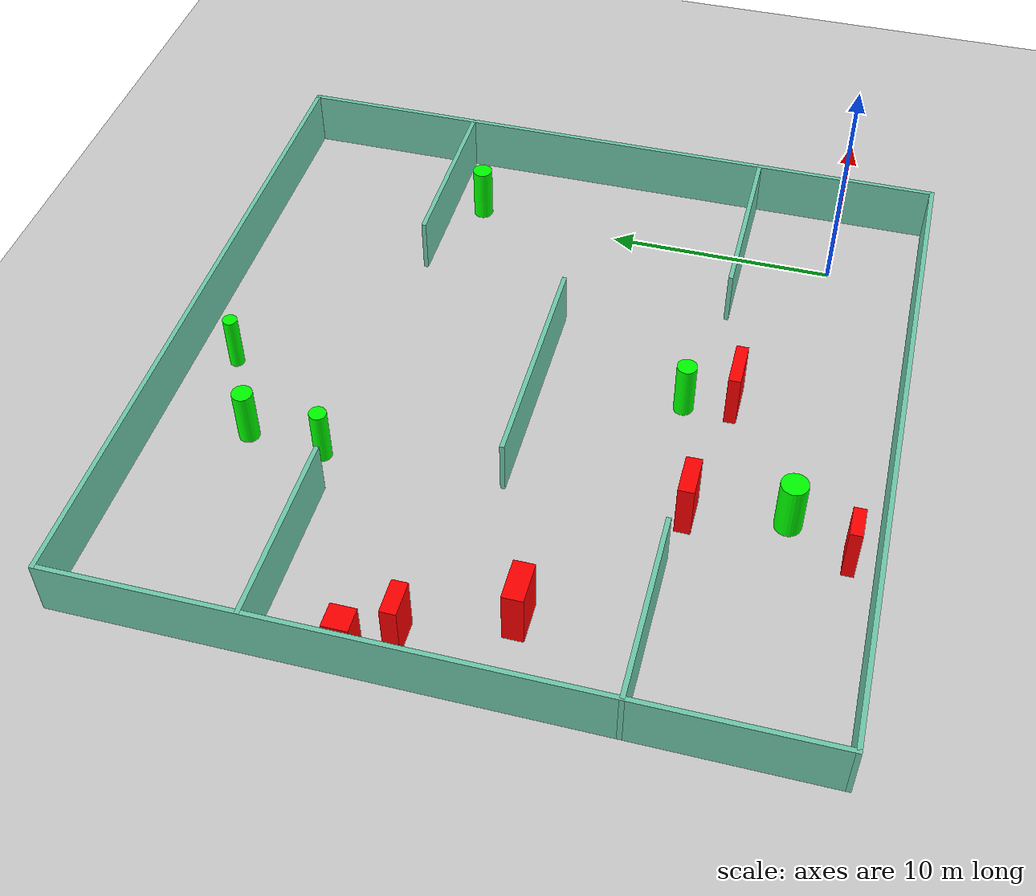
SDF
<sdf version="1.7">
 <world name="default">
  <light name="sun" type="directional">
   <pose>0 0 10 0 -0 0</pose>
   <diffuse>0.8 0.8 0.8 1</diffuse>
   <specular>0.2 0.2 0.2 1</specular>
   <attenuation>
    <range>1000</range>
    <constant>0.9</constant>
    <linear>0.01</linear>
    <quadratic>0.001</quadratic>
   </attenuation>
   <direction>-0.5 0.1 -0.9</direction>
   <spot><inner_angle>0</inner_angle><outer_angle>0</outer_angle><falloff>0</falloff></spot>
  </light>
  <model name="ground_plane">
   <static>1</static>
   <link name="link">
    <collision name="collision">
     <geometry><plane><normal>0 0 1</normal><size>100 100</size></plane></geometry>
     <surface>
      <contact><collide_bitmask>65535</collide_bitmask></contact>
      <friction><ode><mu>100</mu><mu2>50</mu2></ode></friction>
     </surface>
    </collision>
    <visual name="visual">
     <cast_shadows>0</cast_shadows>
     <geometry><plane><normal>0 0 1</normal><size>100 100</size></plane></geometry>
     <material>
      <script><uri>file://media/materials/scripts/gazebo.material</uri><name>Gazebo/Grey</name></script>
     </material>
    </visual>
   </link>
  </model>
  <gravity>0 0 -9.8</gravity>
  <magnetic_field>6e-06 2.3e-05 -4.2e-05</magnetic_field>
  <atmosphere type="adiabatic"/>
  <physics type="ode">
   <max_step_size>0.001</max_step_size>
   <real_time_factor>1</real_time_factor>
   <real_time_update_rate>1000</real_time_update_rate>
  </physics>
  <scene><ambient>0.4 0.4 0.4 1</ambient><background>0.7 0.7 0.7 1</background><shadows>1</shadows></scene>
  <spherical_coordinates>
   <surface_model>EARTH_WGS84</surface_model>
   <latitude_deg>0</latitude_deg>
   <longitude_deg>0</longitude_deg>
   <elevation>0</elevation>
   <heading_deg>0</heading_deg>
  </spherical_coordinates>
  <model name="my_base_walls">
   <link name="Wall_10">
    <collision name="Wall_10_Collision">
     <geometry><box><size>8.2 0.2 2.5</size></box></geometry>
     <pose>0 0 1.25 0 -0 0</pose>
    </collision>
    <visual name="Wall_10_Visual">
     <pose>0 0 1.25 0 -0 0</pose>
     <geometry><box><size>8.2 0.2 2.5</size></box></geometry>
     <material>
      <script><uri>file://media/materials/scripts/gazebo.material</uri><name>Gazebo/Grey</name></script>
      <ambient>0.435294 0.796078 0.67451 1</ambient>
     </material>
     <meta><layer>0</layer></meta>
    </visual>
    <pose>-11 -7 0 0 -0 0</pose>
   </link>
   <link name="Wall_12">
    <collision name="Wall_12_Collision">
     <geometry><box><size>8.2 0.2 2.5</size></box></geometry>
     <pose>0 0 1.25 0 -0 0</pose>
    </collision>
    <visual name="Wall_12_Visual">
     <pose>0 0 1.25 0 -0 0</pose>
     <geometry><box><size>8.2 0.2 2.5</size></box></geometry>
     <material>
      <script><uri>file://media/materials/scripts/gazebo.material</uri><name>Gazebo/Grey</name></script>
      <ambient>0.435294 0.796078 0.67451 1</ambient>
     </material>
     <meta><layer>0</layer></meta>
    </visual>
    <pose>-11 7 0 0 -0 0</pose>
   </link>
   <link name="Wall_14">
    <collision name="Wall_14_Collision">
     <geometry><box><size>8.2 0.2 2.5</size></box></geometry>
     <pose>0 0 1.25 0 -0 0</pose>
    </collision>
    <visual name="Wall_14_Visual">
     <pose>0 0 1.25 0 -0 0</pose>
     <geometry><box><size>8.2 0.2 2.5</size></box></geometry>
     <material>
      <script><uri>file://media/materials/scripts/gazebo.material</uri><name>Gazebo/Grey</name></script>
      <ambient>0.435294 0.796078 0.67451 1</ambient>
     </material>
     <meta><layer>0</layer></meta>
    </visual>
    <pose>11 7 0 0 -0 3.14159</pose>
   </link>
   <link name="Wall_16">
    <collision name="Wall_16_Collision">
     <geometry><box><size>10.2 0.2 2.5</size></box></geometry>
     <pose>0 0 1.25 0 -0 0</pose>
    </collision>
    <visual name="Wall_16_Visual">
     <pose>0 0 1.25 0 -0 0</pose>
     <geometry><box><size>10.2 0.2 2.5</size></box></geometry>
     <material>
      <script><uri>file://media/materials/scripts/gazebo.material</uri><name>Gazebo/Grey</name></script>
      <ambient>0.435294 0.796078 0.67451 1</ambient>
     </material>
     <meta><layer>0</layer></meta>
    </visual>
    <pose>0 0 0 0 -0 3.14159</pose>
   </link>
   <link name="Wall_2">
    <collision name="Wall_2_Collision">
     <geometry><box><size>30.2 0.2 2.5</size></box></geometry>
     <pose>0 0 1.25 0 -0 0</pose>
    </collision>
    <visual name="Wall_2_Visual">
     <pose>0 0 1.25 0 -0 0</pose>
     <geometry><box><size>30.2 0.2 2.5</size></box></geometry>
     <material>
      <script><uri>file://media/materials/scripts/gazebo.material</uri><name>Gazebo/Grey</name></script>
      <ambient>0.435294 0.796078 0.67451 1</ambient>
     </material>
     <meta><layer>0</layer></meta>
    </visual>
    <pose>0 -15 0 0 -0 3.14159</pose>
   </link>
   <link name="Wall_3">
    <collision name="Wall_3_Collision">
     <geometry><box><size>30.2 0.2 2.5</size></box></geometry>
     <pose>0 0 1.25 0 -0 0</pose>
    </collision>
    <visual name="Wall_3_Visual">
     <pose>0 0 1.25 0 -0 0</pose>
     <geometry><box><size>30.2 0.2 2.5</size></box></geometry>
     <material>
      <script><uri>file://media/materials/scripts/gazebo.material</uri><name>Gazebo/Grey</name></script>
      <ambient>0.435294 0.796078 0.67451 1</ambient>
     </material>
     <meta><layer>0</layer></meta>
    </visual>
    <pose>-15 0 0 0 -0 1.5708</pose>
   </link>
   <link name="Wall_4">
    <collision name="Wall_4_Collision">
     <geometry><box><size>30.2 0.2 2.5</size></box></geometry>
     <pose>0 0 1.25 0 -0 0</pose>
    </collision>
    <visual name="Wall_4_Visual">
     <pose>0 0 1.25 0 -0 0</pose>
     <geometry><box><size>30.2 0.2 2.5</size></box></geometry>
     <material>
      <script><uri>file://media/materials/scripts/gazebo.material</uri><name>Gazebo/Grey</name></script>
      <ambient>0.435294 0.796078 0.67451 1</ambient>
     </material>
     <meta><layer>0</layer></meta>
    </visual>
    <pose>0 15 0 0 -0 0</pose>
   </link>
   <link name="Wall_6">
    <collision name="Wall_6_Collision">
     <geometry><box><size>30.2 0.2 2.5</size></box></geometry>
     <pose>0 0 1.25 0 -0 0</pose>
    </collision>
    <visual name="Wall_6_Visual">
     <pose>0 0 1.25 0 -0 0</pose>
     <geometry><box><size>30.2 0.2 2.5</size></box></geometry>
     <material>
      <script><uri>file://media/materials/scripts/gazebo.material</uri><name>Gazebo/Grey</name></script>
      <ambient>0.435294 0.796078 0.67451 1</ambient>
     </material>
     <meta><layer>0</layer></meta>
    </visual>
    <pose>15 0 0 0 -0 1.5708</pose>
   </link>
   <link name="Wall_8">
    <collision name="Wall_8_Collision">
     <geometry><box><size>8.2 0.2 2.5</size></box></geometry>
     <pose>0 0 1.25 0 -0 0</pose>
    </collision>
    <visual name="Wall_8_Visual">
     <pose>0 0 1.25 0 -0 0</pose>
     <geometry><box><size>8.2 0.2 2.5</size></box></geometry>
     <material>
      <script><uri>file://media/materials/scripts/gazebo.material</uri><name>Gazebo/Grey</name></script>
      <ambient>0.435294 0.796078 0.67451 1</ambient>
     </material>
     <meta><layer>0</layer></meta>
    </visual>
    <pose>11 -7 0 0 -0 3.14159</pose>
   </link>
   <static>1</static>
   <pose>-11 11 0 0 -0 0</pose>
  </model>
  <model name="cylinder1">
   <static>1</static>
   <link name="link">
    <inertial>
     <mass>1</mass>
     <inertia><ixx>0.5</ixx><ixy>0</ixy><ixz>0</ixz><iyy>0.5</iyy><iyz>0</iyz><izz>1</izz></inertia>
    </inertial>
    <collision name="collision">
     <geometry><cylinder><radius>0.3704196095841307</radius><length>2.5</length></cylinder></geometry>
    </collision>
    <visual name="visual">
     <geometry><cylinder><radius>0.3704196095841307</radius><length>2.5</length></cylinder></geometry>
     <material>
      <ambient>0 1 0 1</ambient>
      <diffuse>0 1 0 1</diffuse>
      <specular>0.1 0.1 0.1 1</specular>
      <emissive>0 0 0 0</emissive>
     </material>
    </visual>
   </link>
   <pose>-16.22072661796682 18.591427453134163 1.25 0 0 0</pose>
  </model>
  <model name="cylinder2">
   <static>1</static>
   <link name="link">
    <inertial>
     <mass>1</mass>
     <inertia><ixx>0.5</ixx><ixy>0</ixy><ixz>0</ixz><iyy>0.5</iyy><iyz>0</iyz><izz>1</izz></inertia>
    </inertial>
    <collision name="collision">
     <geometry><cylinder><radius>0.3147209102239437</radius><length>2.5</length></cylinder></geometry>
    </collision>
    <visual name="visual">
     <geometry><cylinder><radius>0.3147209102239437</radius><length>2.5</length></cylinder></geometry>
     <material>
      <ambient>0 1 0 1</ambient>
      <diffuse>0 1 0 1</diffuse>
      <specular>0.1 0.1 0.1 1</specular>
      <emissive>0 0 0 0</emissive>
     </material>
    </visual>
   </link>
   <pose>-12.08204363236691 24.064850159989522 1.25 0 0 0</pose>
  </model>
  <model name="cylinder3">
   <static>1</static>
   <link name="link">
    <inertial>
     <mass>1</mass>
     <inertia><ixx>0.5</ixx><ixy>0</ixy><ixz>0</ixz><iyy>0.5</iyy><iyz>0</iyz><izz>1</izz></inertia>
    </inertial>
    <collision name="collision">
     <geometry><cylinder><radius>0.5645098644212814</radius><length>2.5</length></cylinder></geometry>
    </collision>
    <visual name="visual">
     <geometry><cylinder><radius>0.5645098644212814</radius><length>2.5</length></cylinder></geometry>
     <material>
      <ambient>0 1 0 1</ambient>
      <diffuse>0 1 0 1</diffuse>
      <specular>0.1 0.1 0.1 1</specular>
      <emissive>0 0 0 0</emissive>
     </material>
    </visual>
   </link>
   <pose>-15.083745046155713 -0.35001753699480975 1.25 0 0 0</pose>
  </model>
  <model name="cylinder4">
   <static>1</static>
   <link name="link">
    <inertial>
     <mass>1</mass>
     <inertia><ixx>0.5</ixx><ixy>0</ixy><ixz>0</ixz><iyy>0.5</iyy><iyz>0</iyz><izz>1</izz></inertia>
    </inertial>
    <collision name="collision">
     <geometry><cylinder><radius>0.43881309685238834</radius><length>2.5</length></cylinder></geometry>
    </collision>
    <visual name="visual">
     <geometry><cylinder><radius>0.43881309685238834</radius><length>2.5</length></cylinder></geometry>
     <material>
      <ambient>0 1 0 1</ambient>
      <diffuse>0 1 0 1</diffuse>
      <specular>0.1 0.1 0.1 1</specular>
      <emissive>0 0 0 0</emissive>
     </material>
    </visual>
   </link>
   <pose>-15.961318318858503 21.930609879253744 1.25 0 0 0</pose>
  </model>
  <model name="cylinder5">
   <static>1</static>
   <link name="link">
    <inertial>
     <mass>1</mass>
     <inertia><ixx>0.5</ixx><ixy>0</ixy><ixz>0</ixz><iyy>0.5</iyy><iyz>0</iyz><izz>1</izz></inertia>
    </inertial>
    <collision name="collision">
     <geometry><cylinder><radius>0.4257567667173992</radius><length>2.5</length></cylinder></geometry>
    </collision>
    <visual name="visual">
     <geometry><cylinder><radius>0.4257567667173992</radius><length>2.5</length></cylinder></geometry>
     <material>
      <ambient>0 1 0 1</ambient>
      <diffuse>0 1 0 1</diffuse>
      <specular>0.1 0.1 0.1 1</specular>
      <emissive>0 0 0 0</emissive>
     </material>
    </visual>
   </link>
   <pose>-9.902742855523652 4.818518292089466 1.25 0 0 0</pose>
  </model>
  <model name="cylinder6">
   <static>1</static>
   <link name="link">
    <inertial>
     <mass>1</mass>
     <inertia><ixx>0.5</ixx><ixy>0</ixy><ixz>0</ixz><iyy>0.5</iyy><iyz>0</iyz><izz>1</izz></inertia>
    </inertial>
    <collision name="collision">
     <geometry><cylinder><radius>0.43654036850963546</radius><length>2.5</length></cylinder></geometry>
    </collision>
    <visual name="visual">
     <geometry><cylinder><radius>0.43654036850963546</radius><length>2.5</length></cylinder></geometry>
     <material>
      <ambient>0 1 0 1</ambient>
      <diffuse>0 1 0 1</diffuse>
      <specular>0.1 0.1 0.1 1</specular>
      <emissive>0 0 0 0</emissive>
     </material>
    </visual>
   </link>
   <pose>0.37147445368606213 16.515253294664955 1.25 0 0 0</pose>
  </model>
  <model name="box1">
   <static>1</static>
   <link name="link">
    <inertial>
     <mass>1</mass>
     <inertia><ixx>0.083</ixx><ixy>0</ixy><ixz>0</ixz><iyy>0.083</iyy><iyz>0</iyz><izz>0.083</izz></inertia>
    </inertial>
    <collision name="collision">
     <geometry><box><size>1.7654652878482116 0.6680754001621402 2.5</size></box></geometry>
    </collision>
    <visual name="visual">
     <geometry><box><size>1.7654652878482116 0.6680754001621402 2.5</size></box></geometry>
     <material>
      <ambient>1 0 0 1</ambient>
      <diffuse>1 0 0 1</diffuse>
      <specular>0.1 0.1 0.1 1</specular>
      <emissive>0 0 0 0</emissive>
     </material>
    </visual>
    <sensor name="my_contact" type="contact">
     <contact><collision>box_collision</collision><topic>__default_topic__</topic></contact>
    </sensor>
   </link>
   <pose>-15.62309728739357 3.6121487041855147 1.25 0 0 0</pose>
  </model>
  <model name="box2">
   <static>1</static>
   <link name="link">
    <inertial>
     <mass>1</mass>
     <inertia><ixx>0.083</ixx><ixy>0</ixy><ixz>0</ixz><iyy>0.083</iyy><iyz>0</iyz><izz>0.083</izz></inertia>
    </inertial>
    <collision name="collision">
     <geometry><box><size>1.352410848653947 0.5156953938814774 2.5</size></box></geometry>
    </collision>
    <visual name="visual">
     <geometry><box><size>1.352410848653947 0.5156953938814774 2.5</size></box></geometry>
     <material>
      <ambient>1 0 0 1</ambient>
      <diffuse>1 0 0 1</diffuse>
      <specular>0.1 0.1 0.1 1</specular>
      <emissive>0 0 0 0</emissive>
     </material>
    </visual>
    <sensor name="my_contact" type="contact">
     <contact><collision>box_collision</collision><topic>__default_topic__</topic></contact>
    </sensor>
   </link>
   <pose>-16.304095151854188 -2.895418067742824 1.25 0 0 0</pose>
  </model>
  <model name="box3">
   <static>1</static>
   <link name="link">
    <inertial>
     <mass>1</mass>
     <inertia><ixx>0.083</ixx><ixy>0</ixy><ixz>0</ixz><iyy>0.083</iyy><iyz>0</iyz><izz>0.083</izz></inertia>
    </inertial>
    <collision name="collision">
     <geometry><box><size>1.736818137665384 0.8584589396538689 2.5</size></box></geometry>
    </collision>
    <visual name="visual">
     <geometry><box><size>1.736818137665384 0.8584589396538689 2.5</size></box></geometry>
     <material>
      <ambient>1 0 0 1</ambient>
      <diffuse>1 0 0 1</diffuse>
      <specular>0.1 0.1 0.1 1</specular>
      <emissive>0 0 0 0</emissive>
     </material>
    </visual>
    <sensor name="my_contact" type="contact">
     <contact><collision>box_collision</collision><topic>__default_topic__</topic></contact>
    </sensor>
   </link>
   <pose>-22.15525314904798 8.690248463250487 1.25 0 0 0</pose>
  </model>
  <model name="box4">
   <static>1</static>
   <link name="link">
    <inertial>
     <mass>1</mass>
     <inertia><ixx>0.083</ixx><ixy>0</ixy><ixz>0</ixz><iyy>0.083</iyy><iyz>0</iyz><izz>0.083</izz></inertia>
    </inertial>
    <collision name="collision">
     <geometry><box><size>1.4641235556633179 0.6541625698855276 2.5</size></box></geometry>
    </collision>
    <visual name="visual">
     <geometry><box><size>1.4641235556633179 0.6541625698855276 2.5</size></box></geometry>
     <material>
      <ambient>1 0 0 1</ambient>
      <diffuse>1 0 0 1</diffuse>
      <specular>0.1 0.1 0.1 1</specular>
      <emissive>0 0 0 0</emissive>
     </material>
    </visual>
    <sensor name="my_contact" type="contact">
     <contact><collision>box_collision</collision><topic>__default_topic__</topic></contact>
    </sensor>
   </link>
   <pose>-23.988800662627913 12.820150128721432 1.25 0 0 0</pose>
  </model>
  <model name="box5">
   <static>1</static>
   <link name="link">
    <inertial>
     <mass>1</mass>
     <inertia><ixx>0.083</ixx><ixy>0</ixy><ixz>0</ixz><iyy>0.083</iyy><iyz>0</iyz><izz>0.083</izz></inertia>
    </inertial>
    <collision name="collision">
     <geometry><box><size>2.070484186871861 0.5209051586614861 2.5</size></box></geometry>
    </collision>
    <visual name="visual">
     <geometry><box><size>2.070484186871861 0.5209051586614861 2.5</size></box></geometry>
     <material>
      <ambient>1 0 0 1</ambient>
      <diffuse>1 0 0 1</diffuse>
      <specular>0.1 0.1 0.1 1</specular>
      <emissive>0 0 0 0</emissive>
     </material>
    </visual>
    <sensor name="my_contact" type="contact">
     <contact><collision>box_collision</collision><topic>__default_topic__</topic></contact>
    </sensor>
   </link>
   <pose>-9.214181140776407 2.7965942985670047 1.25 0 0 0</pose>
  </model>
  <model name="box6">
   <static>1</static>
   <link name="link">
    <inertial>
     <mass>1</mass>
     <inertia><ixx>0.083</ixx><ixy>0</ixy><ixz>0</ixz><iyy>0.083</iyy><iyz>0</iyz><izz>0.083</izz></inertia>
    </inertial>
    <collision name="collision">
     <geometry><box><size>1.0272232521368871 1.0436185310947605 2.5</size></box></geometry>
    </collision>
    <visual name="visual">
     <geometry><box><size>1.0272232521368871 1.0436185310947605 2.5</size></box></geometry>
     <material>
      <ambient>1 0 0 1</ambient>
      <diffuse>1 0 0 1</diffuse>
      <specular>0.1 0.1 0.1 1</specular>
      <emissive>0 0 0 0</emissive>
     </material>
    </visual>
    <sensor name="my_contact" type="contact">
     <contact><collision>box_collision</collision><topic>__default_topic__</topic></contact>
    </sensor>
   </link>
   <pose>-25.311136628697064 14.422246557502604 1.25 0 0 0</pose>
  </model>
 </world>
</sdf>
